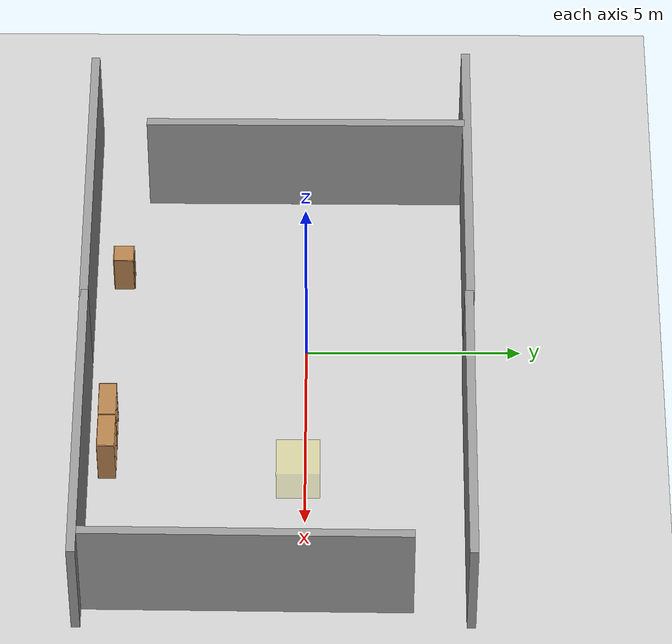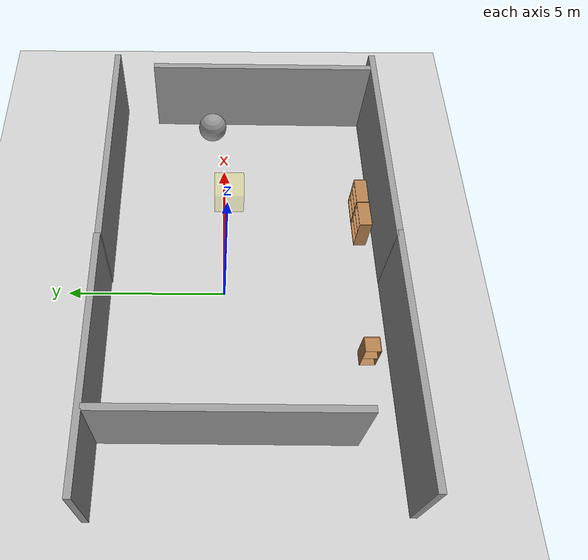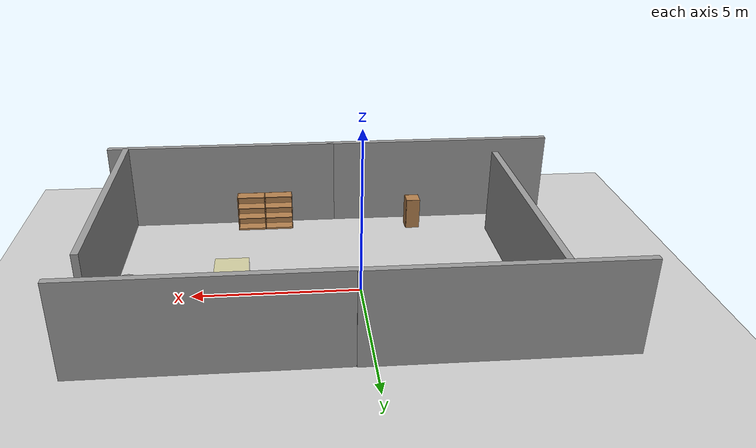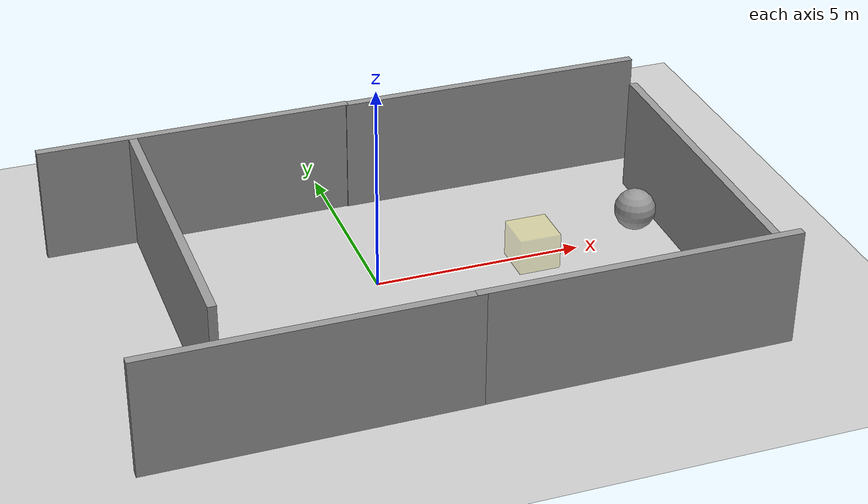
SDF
<sdf version="1.6">
 <world name="default">
  <model name="ground_plane">
   <static>1</static>
   <link name="link">
    <collision name="collision">
     <geometry><plane><normal>0 0 1</normal><size>100 100</size></plane></geometry>
     <surface>
      <contact><collide_bitmask>65535</collide_bitmask></contact>
      <friction><ode><mu>100</mu><mu2>50</mu2></ode></friction>
     </surface>
    </collision>
    <visual name="visual">
     <cast_shadows>0</cast_shadows>
     <geometry><plane><normal>0 0 1</normal><size>100 100</size></plane></geometry>
     <material>
      <script><uri>file://media/materials/scripts/gazebo.material</uri><name>Gazebo/Grey</name></script>
     </material>
    </visual>
   </link>
  </model>
  <light name="sun" type="directional">
   <pose>0 0 10 0 -0 0</pose>
   <diffuse>0.8 0.8 0.8 1</diffuse>
   <specular>0.2 0.2 0.2 1</specular>
   <attenuation>
    <range>1000</range>
    <constant>0.9</constant>
    <linear>0.01</linear>
    <quadratic>0.001</quadratic>
   </attenuation>
   <direction>-0.5 0.1 -0.9</direction>
  </light>
  <gravity>0 0 -9.8</gravity>
  <magnetic_field>6e-06 2.3e-05 -4.2e-05</magnetic_field>
  <atmosphere type="adiabatic"/>
  <physics name="default_physics" default="0" type="ode">
   <max_step_size>0.001</max_step_size>
   <real_time_factor>1</real_time_factor>
   <real_time_update_rate>1000</real_time_update_rate>
  </physics>
  <scene><ambient>0.4 0.4 0.4 1</ambient><background>0.7 0.7 0.7 1</background><shadows>1</shadows></scene>
  <spherical_coordinates>
   <surface_model>EARTH_WGS84</surface_model>
   <latitude_deg>0</latitude_deg>
   <longitude_deg>0</longitude_deg>
   <elevation>0</elevation>
   <heading_deg>0</heading_deg>
  </spherical_coordinates>
  <model name="grey_wall">
   <static>1</static>
   <link name="link">
    <pose>0 0 1.4 0 -0 0</pose>
    <collision name="collision"><geometry><box><size>7.5 0.2 2.8</size></box></geometry></collision>
    <visual name="visual">
     <cast_shadows>0</cast_shadows>
     <geometry><box><size>7.5 0.2 2.8</size></box></geometry>
     <material>
      <script>
       <uri>model://grey_wall/materials/scripts</uri>
       <uri>model://grey_wall/materials/textures</uri>
       <name>vrc/grey_wall</name>
      </script>
     </material>
    </visual>
   </link>
   <pose>4.18566 3.72986 0 0 -0 0</pose>
  </model>
  <model name="grey_wall_0">
   <static>1</static>
   <link name="link">
    <pose>0 0 1.4 0 -0 0</pose>
    <collision name="collision"><geometry><box><size>7.5 0.2 2.8</size></box></geometry></collision>
    <visual name="visual">
     <cast_shadows>0</cast_shadows>
     <geometry><box><size>7.5 0.2 2.8</size></box></geometry>
     <material>
      <script>
       <uri>model://grey_wall/materials/scripts</uri>
       <uri>model://grey_wall/materials/textures</uri>
       <name>vrc/grey_wall</name>
      </script>
     </material>
    </visual>
   </link>
   <pose>-3.2545 3.7572 0 0 -0 0</pose>
  </model>
  <model name="grey_wall_1">
   <static>1</static>
   <link name="link">
    <pose>0 0 1.4 0 -0 0</pose>
    <collision name="collision"><geometry><box><size>7.5 0.2 2.8</size></box></geometry></collision>
    <visual name="visual">
     <cast_shadows>0</cast_shadows>
     <geometry><box><size>7.5 0.2 2.8</size></box></geometry>
     <material>
      <script>
       <uri>model://grey_wall/materials/scripts</uri>
       <uri>model://grey_wall/materials/textures</uri>
       <name>vrc/grey_wall</name>
      </script>
     </material>
    </visual>
   </link>
   <pose>4.20465 -5.07923 0 0 -0 0</pose>
  </model>
  <model name="grey_wall_2">
   <static>1</static>
   <link name="link">
    <pose>0 0 1.4 0 -0 0</pose>
    <collision name="collision"><geometry><box><size>7.5 0.2 2.8</size></box></geometry></collision>
    <visual name="visual">
     <cast_shadows>0</cast_shadows>
     <geometry><box><size>7.5 0.2 2.8</size></box></geometry>
     <material>
      <script>
       <uri>model://grey_wall/materials/scripts</uri>
       <uri>model://grey_wall/materials/textures</uri>
       <name>vrc/grey_wall</name>
      </script>
     </material>
    </visual>
   </link>
   <pose>-3.08202 -5.08496 0 0 -0 0</pose>
  </model>
  <model name="grey_wall_3">
   <static>1</static>
   <link name="link">
    <pose>0 0 1.4 0 -0 0</pose>
    <collision name="collision"><geometry><box><size>7.5 0.2 2.8</size></box></geometry></collision>
    <visual name="visual">
     <cast_shadows>0</cast_shadows>
     <geometry><box><size>7.5 0.2 2.8</size></box></geometry>
     <material>
      <script>
       <uri>model://grey_wall/materials/scripts</uri>
       <uri>model://grey_wall/materials/textures</uri>
       <name>vrc/grey_wall</name>
      </script>
     </material>
    </visual>
   </link>
   <pose>7.38552 -1.30173 0 0 0 -1.57991</pose>
  </model>
  <model name="cabinet">
   <static>1</static>
   <link name="cabinet_bottom_plate">
    <inertial>
     <pose>0 0 -1 0 -0 0</pose>
     <inertia><ixx>2.05</ixx><ixy>0</ixy><ixz>0</ixz><iyy>2.05</iyy><iyz>0</iyz><izz>2.05</izz></inertia>
     <mass>25</mass>
    </inertial>
    <collision name="cabinet_bottom_plate_geom">
     <pose>0 0 0.01 0 -0 0</pose>
     <geometry><box><size>0.45 0.45 0.02</size></box></geometry>
    </collision>
    <visual name="cabinet_bottom_plate_geom_visual">
     <pose>0 0 0.01 0 -0 0</pose>
     <geometry><box><size>0.45 0.45 0.02</size></box></geometry>
     <material>
      <script><uri>file://media/materials/scripts/gazebo.material</uri><name>Gazebo/Wood</name></script>
     </material>
    </visual>
    <collision name="cabinet_bottom_plate_geom_cabinet_back_plate">
     <pose>0.235 0 0.51 0 -0 0</pose>
     <geometry><box><size>0.02 0.45 1.02</size></box></geometry>
    </collision>
    <visual name="cabinet_bottom_plate_geom_cabinet_back_plate_visual">
     <pose>0.235 0 0.51 0 -0 0</pose>
     <geometry><box><size>0.02 0.45 1.02</size></box></geometry>
     <material>
      <script><uri>file://media/materials/scripts/gazebo.material</uri><name>Gazebo/Wood</name></script>
     </material>
    </visual>
    <collision name="cabinet_bottom_plate_geom_cabinet_left_plate">
     <pose>0 0.235 0.51 0 -0 0</pose>
     <geometry><box><size>0.45 0.02 1.02</size></box></geometry>
    </collision>
    <visual name="cabinet_bottom_plate_geom_cabinet_left_plate_visual">
     <pose>0 0.235 0.51 0 -0 0</pose>
     <geometry><box><size>0.45 0.02 1.02</size></box></geometry>
     <material>
      <script><uri>file://media/materials/scripts/gazebo.material</uri><name>Gazebo/Wood</name></script>
     </material>
    </visual>
    <collision name="cabinet_bottom_plate_geom_cabinet_middle_plate">
     <pose>0 0 0.51 0 -0 0</pose>
     <geometry><box><size>0.45 0.45 0.02</size></box></geometry>
    </collision>
    <visual name="cabinet_bottom_plate_geom_cabinet_middle_plate_visual">
     <pose>0 0 0.51 0 -0 0</pose>
     <geometry><box><size>0.45 0.45 0.02</size></box></geometry>
     <material>
      <script><uri>file://media/materials/scripts/gazebo.material</uri><name>Gazebo/Wood</name></script>
     </material>
    </visual>
    <collision name="cabinet_bottom_plate_geom_cabinet_right_plate">
     <pose>0 -0.235 0.51 0 -0 0</pose>
     <geometry><box><size>0.45 0.02 1.02</size></box></geometry>
    </collision>
    <visual name="cabinet_bottom_plate_geom_cabinet_right_plate_visual">
     <pose>0 -0.235 0.51 0 -0 0</pose>
     <geometry><box><size>0.45 0.02 1.02</size></box></geometry>
     <material>
      <script><uri>file://media/materials/scripts/gazebo.material</uri><name>Gazebo/Wood</name></script>
     </material>
    </visual>
    <collision name="cabinet_bottom_plate_geom_cabinet_top_plate">
     <pose>0 0 1.01 0 -0 0</pose>
     <geometry><box><size>0.45 0.45 0.02</size></box></geometry>
    </collision>
    <visual name="cabinet_bottom_plate_geom_cabinet_top_plate_visual">
     <pose>0 0 1.01 0 -0 0</pose>
     <geometry><box><size>0.45 0.45 0.02</size></box></geometry>
     <material>
      <script><uri>file://media/materials/scripts/gazebo.material</uri><name>Gazebo/Wood</name></script>
     </material>
    </visual>
   </link>
   <pose>-2.18861 -4.31788 0 0 -0 0</pose>
  </model>
  <model name="bookshelf_0">
   <static>1</static>
   <link name="link">
    <inertial><mass>1</mass></inertial>
    <collision name="back">
     <pose>0 0.005 0.6 0 -0 0</pose>
     <geometry><box><size>0.9 0.01 1.2</size></box></geometry>
    </collision>
    <visual name="visual1">
     <pose>0 0.005 0.6 0 -0 0</pose>
     <geometry><box><size>0.9 0.01 1.2</size></box></geometry>
     <material>
      <script><uri>file://media/materials/scripts/gazebo.material</uri><name>Gazebo/Wood</name></script>
     </material>
    </visual>
    <collision name="left_side">
     <pose>0.45 -0.195 0.6 0 -0 0</pose>
     <geometry><box><size>0.02 0.4 1.2</size></box></geometry>
    </collision>
    <visual name="visual2">
     <pose>0.45 -0.195 0.6 0 -0 0</pose>
     <geometry><box><size>0.02 0.4 1.2</size></box></geometry>
     <material>
      <script><uri>file://media/materials/scripts/gazebo.material</uri><name>Gazebo/Wood</name></script>
     </material>
    </visual>
    <collision name="right_side">
     <pose>-0.45 -0.195 0.6 0 -0 0</pose>
     <geometry><box><size>0.02 0.4 1.2</size></box></geometry>
    </collision>
    <visual name="visual3">
     <pose>-0.45 -0.195 0.6 0 -0 0</pose>
     <geometry><box><size>0.02 0.4 1.2</size></box></geometry>
     <material>
      <script><uri>file://media/materials/scripts/gazebo.material</uri><name>Gazebo/Wood</name></script>
     </material>
    </visual>
    <collision name="bottom">
     <pose>0 -0.195 0.03 0 -0 0</pose>
     <geometry><box><size>0.88 0.4 0.06</size></box></geometry>
    </collision>
    <visual name="visual4">
     <pose>0 -0.195 0.03 0 -0 0</pose>
     <geometry><box><size>0.88 0.4 0.06</size></box></geometry>
     <material>
      <script><uri>file://media/materials/scripts/gazebo.material</uri><name>Gazebo/Wood</name></script>
     </material>
    </visual>
    <collision name="top">
     <pose>0 -0.195 1.19 0 -0 0</pose>
     <geometry><box><size>0.88 0.4 0.02</size></box></geometry>
    </collision>
    <visual name="visual5">
     <pose>0 -0.195 1.19 0 -0 0</pose>
     <geometry><box><size>0.88 0.4 0.02</size></box></geometry>
     <material>
      <script><uri>file://media/materials/scripts/gazebo.material</uri><name>Gazebo/Wood</name></script>
     </material>
    </visual>
    <collision name="low_shelf">
     <pose>0 -0.195 0.43 0 -0 0</pose>
     <geometry><box><size>0.88 0.4 0.02</size></box></geometry>
    </collision>
    <visual name="visual6">
     <pose>0 -0.195 0.43 0 -0 0</pose>
     <geometry><box><size>0.88 0.4 0.02</size></box></geometry>
     <material>
      <script><uri>file://media/materials/scripts/gazebo.material</uri><name>Gazebo/Wood</name></script>
     </material>
    </visual>
    <collision name="high_shelf">
     <pose>0 -0.195 0.8 0 -0 0</pose>
     <geometry><box><size>0.88 0.4 0.02</size></box></geometry>
    </collision>
    <visual name="visual7">
     <pose>0 -0.195 0.8 0 -0 0</pose>
     <geometry><box><size>0.88 0.4 0.02</size></box></geometry>
     <material>
      <script><uri>file://media/materials/scripts/gazebo.material</uri><name>Gazebo/Wood</name></script>
     </material>
    </visual>
   </link>
   <pose>3.29274 -4.72554 0 0 -0 3.13623</pose>
  </model>
  <model name="bookshelf_1">
   <static>1</static>
   <link name="link">
    <inertial><mass>1</mass></inertial>
    <collision name="back">
     <pose>0 0.005 0.6 0 -0 0</pose>
     <geometry><box><size>0.9 0.01 1.2</size></box></geometry>
    </collision>
    <visual name="visual1">
     <pose>0 0.005 0.6 0 -0 0</pose>
     <geometry><box><size>0.9 0.01 1.2</size></box></geometry>
     <material>
      <script><uri>file://media/materials/scripts/gazebo.material</uri><name>Gazebo/Wood</name></script>
     </material>
    </visual>
    <collision name="left_side">
     <pose>0.45 -0.195 0.6 0 -0 0</pose>
     <geometry><box><size>0.02 0.4 1.2</size></box></geometry>
    </collision>
    <visual name="visual2">
     <pose>0.45 -0.195 0.6 0 -0 0</pose>
     <geometry><box><size>0.02 0.4 1.2</size></box></geometry>
     <material>
      <script><uri>file://media/materials/scripts/gazebo.material</uri><name>Gazebo/Wood</name></script>
     </material>
    </visual>
    <collision name="right_side">
     <pose>-0.45 -0.195 0.6 0 -0 0</pose>
     <geometry><box><size>0.02 0.4 1.2</size></box></geometry>
    </collision>
    <visual name="visual3">
     <pose>-0.45 -0.195 0.6 0 -0 0</pose>
     <geometry><box><size>0.02 0.4 1.2</size></box></geometry>
     <material>
      <script><uri>file://media/materials/scripts/gazebo.material</uri><name>Gazebo/Wood</name></script>
     </material>
    </visual>
    <collision name="bottom">
     <pose>0 -0.195 0.03 0 -0 0</pose>
     <geometry><box><size>0.88 0.4 0.06</size></box></geometry>
    </collision>
    <visual name="visual4">
     <pose>0 -0.195 0.03 0 -0 0</pose>
     <geometry><box><size>0.88 0.4 0.06</size></box></geometry>
     <material>
      <script><uri>file://media/materials/scripts/gazebo.material</uri><name>Gazebo/Wood</name></script>
     </material>
    </visual>
    <collision name="top">
     <pose>0 -0.195 1.19 0 -0 0</pose>
     <geometry><box><size>0.88 0.4 0.02</size></box></geometry>
    </collision>
    <visual name="visual5">
     <pose>0 -0.195 1.19 0 -0 0</pose>
     <geometry><box><size>0.88 0.4 0.02</size></box></geometry>
     <material>
      <script><uri>file://media/materials/scripts/gazebo.material</uri><name>Gazebo/Wood</name></script>
     </material>
    </visual>
    <collision name="low_shelf">
     <pose>0 -0.195 0.43 0 -0 0</pose>
     <geometry><box><size>0.88 0.4 0.02</size></box></geometry>
    </collision>
    <visual name="visual6">
     <pose>0 -0.195 0.43 0 -0 0</pose>
     <geometry><box><size>0.88 0.4 0.02</size></box></geometry>
     <material>
      <script><uri>file://media/materials/scripts/gazebo.material</uri><name>Gazebo/Wood</name></script>
     </material>
    </visual>
    <collision name="high_shelf">
     <pose>0 -0.195 0.8 0 -0 0</pose>
     <geometry><box><size>0.88 0.4 0.02</size></box></geometry>
    </collision>
    <visual name="visual7">
     <pose>0 -0.195 0.8 0 -0 0</pose>
     <geometry><box><size>0.88 0.4 0.02</size></box></geometry>
     <material>
      <script><uri>file://media/materials/scripts/gazebo.material</uri><name>Gazebo/Wood</name></script>
     </material>
    </visual>
   </link>
   <pose>2.3746 -4.72649 0 0 0 -3.13864</pose>
  </model>
  <model name="grey_wall_4">
   <static>1</static>
   <link name="link">
    <pose>0 0 1.4 0 -0 0</pose>
    <collision name="collision"><geometry><box><size>7.5 0.2 2.8</size></box></geometry></collision>
    <visual name="visual">
     <cast_shadows>0</cast_shadows>
     <geometry><box><size>7.5 0.2 2.8</size></box></geometry>
     <material>
      <script>
       <uri>model://grey_wall/materials/scripts</uri>
       <uri>model://grey_wall/materials/textures</uri>
       <name>vrc/grey_wall</name>
      </script>
     </material>
    </visual>
   </link>
   <pose>-4.76267 -0.050552 0 0 0 -1.57226</pose>
  </model>
  <model name="unit_sphere">
   <pose>6.69114 0.425157 0.5 0 -0 0</pose>
   <link name="link">
    <inertial>
     <mass>1</mass>
     <inertia><ixx>0.1</ixx><ixy>0</ixy><ixz>0</ixz><iyy>0.1</iyy><iyz>0</iyz><izz>0.1</izz></inertia>
    </inertial>
    <collision name="collision"><geometry><sphere><radius>0.5</radius></sphere></geometry></collision>
    <visual name="visual">
     <geometry><sphere><radius>0.5</radius></sphere></geometry>
     <material>
      <script><name>Gazebo/Grey</name><uri>file://media/materials/scripts/gazebo.material</uri></script>
     </material>
    </visual>
   </link>
  </model>
  <model name="RegionEventBox">
   <static>1</static>
   <pose>3.78444 -0.159324 0 0 -0 0</pose>
   <link name="link">
    <visual name="visual">
     <transparency>0.75</transparency>
     <geometry><box><size>1 1 1.75</size></box></geometry>
     <material>
      <script><uri>file://media/materials/scripts/gazebo.material</uri><name>Gazebo/Yellow</name></script>
     </material>
    </visual>
   </link>
   <plugin name="region_event_box" filename="libRegionEventBoxPlugin.so">
    <event><name>model_in_region_event_box</name><type>inclusion</type><active>true</active></event>
   </plugin>
  </model>
 </world>
</sdf>
